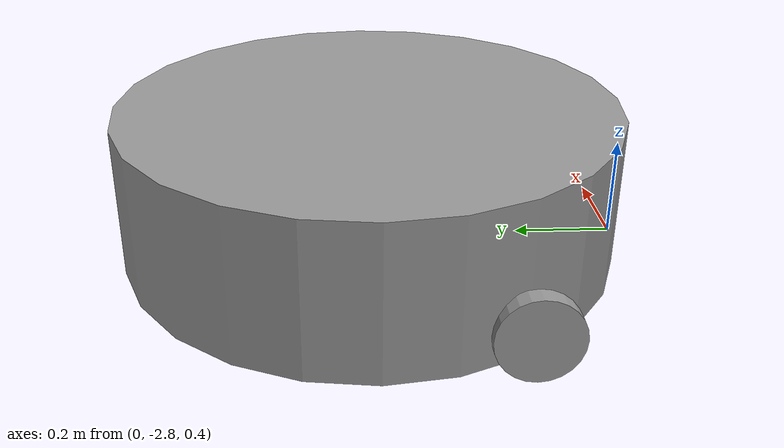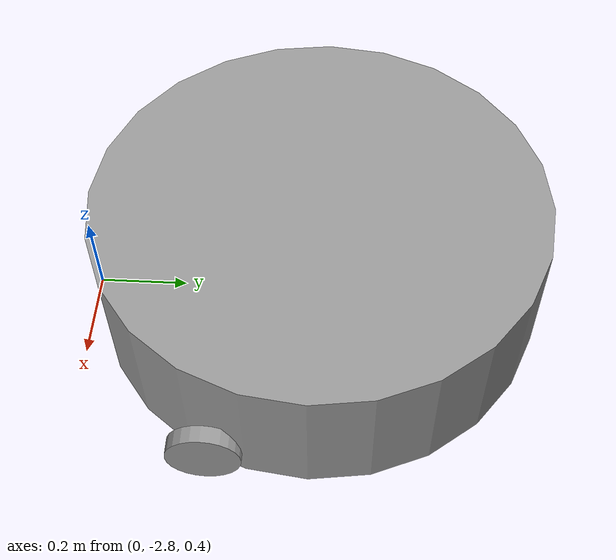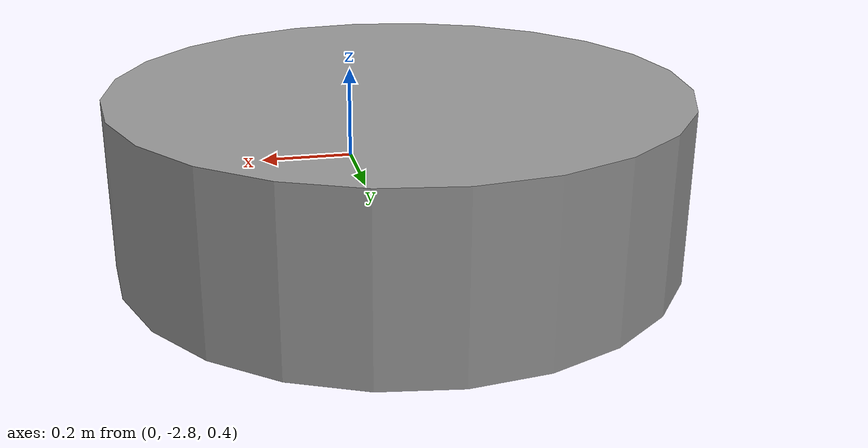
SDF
<?xml version='1.0'?>
<sdf version='1.6'>
  <model name='VacuumRobot'>
    <link name='link_0'>
      <pose frame=''>-0.010873 -2.28364 0.553866 0 -0 0</pose>
      <inertial>
        <mass>1</mass>
        <inertia>
          <ixx>0.145833</ixx>
          <ixy>0</ixy>
          <ixz>0</ixz>
          <iyy>0.145833</iyy>
          <iyz>0</iyz>
          <izz>0.125</izz>
        </inertia>
        <pose frame=''>0 0 0 0 -0 0</pose>
      </inertial>
      <gravity>1</gravity>
      <self_collide>0</self_collide>
      <kinematic>0</kinematic>
      <visual name='visual'>
        <pose frame=''>0 0 0 0 -0 0</pose>
        <geometry>
          <cylinder>
            <radius>0.5</radius>
            <length>0.3</length>
          </cylinder>
        </geometry>
        <material>
          <lighting>1</lighting>
          <script>
            <uri>file://media/materials/scripts/gazebo.material</uri>
            <name>Gazebo/Grey</name>
          </script>
          <shader type='pixel'>
            <normal_map>__default__</normal_map>
          </shader>
          <ambient>0.3 0.3 0.3 1</ambient>
          <diffuse>0.7 0.7 0.7 1</diffuse>
          <specular>0.01 0.01 0.01 1</specular>
          <emissive>0 0 0 1</emissive>
        </material>
        <transparency>0</transparency>
        <cast_shadows>1</cast_shadows>
      </visual>
      <collision name='collision'>
        <laser_retro>0</laser_retro>
        <max_contacts>10</max_contacts>
        <pose frame=''>0 0 0 0 -0 0</pose>
        <geometry>
          <cylinder>
            <radius>0.5</radius>
            <length>0.3</length>
          </cylinder>
        </geometry>
        <surface>
          <friction>
            <ode>
              <mu>1</mu>
              <mu2>1</mu2>
              <fdir1>0 0 0</fdir1>
              <slip1>0</slip1>
              <slip2>0</slip2>
            </ode>
            <torsional>
              <coefficient>1</coefficient>
              <patch_radius>0</patch_radius>
              <surface_radius>0</surface_radius>
              <use_patch_radius>1</use_patch_radius>
              <ode>
                <slip>0</slip>
              </ode>
            </torsional>
          </friction>
          <bounce>
            <restitution_coefficient>0</restitution_coefficient>
            <threshold>1e+06</threshold>
          </bounce>
          <contact>
            <collide_without_contact>0</collide_without_contact>
            <collide_without_contact_bitmask>1</collide_without_contact_bitmask>
            <collide_bitmask>1</collide_bitmask>
            <ode>
              <soft_cfm>0</soft_cfm>
              <soft_erp>0.2</soft_erp>
              <kp>1e+13</kp>
              <kd>1</kd>
              <max_vel>0.01</max_vel>
              <min_depth>0</min_depth>
            </ode>
            <bullet>
              <split_impulse>1</split_impulse>
              <split_impulse_penetration_threshold>-0.01</split_impulse_penetration_threshold>
              <soft_cfm>0</soft_cfm>
              <soft_erp>0.2</soft_erp>
              <kp>1e+13</kp>
              <kd>1</kd>
            </bullet>
          </contact>
        </surface>
      </collision>
    </link>
    <link name='link_2'>
      <pose frame=''>-0.47356 -2.54265 0.466165 0 -1.54019 0</pose>
      <inertial>
        <mass>0.00089413</mass>
        <inertia>
          <ixx>1.48e-06</ixx>
          <ixy>0</ixy>
          <ixz>0</ixz>
          <iyy>1.48e-06</iyy>
          <iyz>0</iyz>
          <izz>2.76e-06</izz>
        </inertia>
        <pose frame=''>0 0 0 0 -0 0</pose>
      </inertial>
      <gravity>1</gravity>
      <self_collide>0</self_collide>
      <kinematic>0</kinematic>
      <visual name='visual'>
        <pose frame=''>0 0 0 0 -0 0</pose>
        <geometry>
          <cylinder>
            <radius>0.0786342</radius>
            <length>0.0361282</length>
          </cylinder>
        </geometry>
        <material>
          <lighting>1</lighting>
          <script>
            <uri>file://media/materials/scripts/gazebo.material</uri>
            <name>Gazebo/Grey</name>
          </script>
          <shader type='pixel'>
            <normal_map>__default__</normal_map>
          </shader>
          <ambient>0.3 0.3 0.3 1</ambient>
          <diffuse>0.7 0.7 0.7 1</diffuse>
          <specular>0.01 0.01 0.01 1</specular>
          <emissive>0 0 0 1</emissive>
        </material>
        <transparency>0</transparency>
        <cast_shadows>1</cast_shadows>
      </visual>
      <collision name='collision'>
        <laser_retro>0</laser_retro>
        <max_contacts>10</max_contacts>
        <pose frame=''>0 0 0 0 -0 0</pose>
        <geometry>
          <cylinder>
            <radius>0.078634</radius>
            <length>0.036128</length>
          </cylinder>
        </geometry>
        <surface>
          <friction>
            <ode>
              <mu>1</mu>
              <mu2>1</mu2>
              <fdir1>0 0 0</fdir1>
              <slip1>0</slip1>
              <slip2>0</slip2>
            </ode>
            <torsional>
              <coefficient>1</coefficient>
              <patch_radius>0</patch_radius>
              <surface_radius>0</surface_radius>
              <use_patch_radius>1</use_patch_radius>
              <ode>
                <slip>0</slip>
              </ode>
            </torsional>
          </friction>
          <bounce>
            <restitution_coefficient>0</restitution_coefficient>
            <threshold>1e+06</threshold>
          </bounce>
          <contact>
            <collide_without_contact>0</collide_without_contact>
            <collide_without_contact_bitmask>1</collide_without_contact_bitmask>
            <collide_bitmask>1</collide_bitmask>
            <ode>
              <soft_cfm>0</soft_cfm>
              <soft_erp>0.2</soft_erp>
              <kp>1e+13</kp>
              <kd>1</kd>
              <max_vel>0.01</max_vel>
              <min_depth>0</min_depth>
            </ode>
            <bullet>
              <split_impulse>1</split_impulse>
              <split_impulse_penetration_threshold>-0.01</split_impulse_penetration_threshold>
              <soft_cfm>0</soft_cfm>
              <soft_erp>0.2</soft_erp>
              <kp>1e+13</kp>
              <kd>1</kd>
            </bullet>
          </contact>
        </surface>
      </collision>
    </link>
    <link name='link_2_clone'>
      <pose frame=''>0.468974 -2.49653 0.46497 0 -1.54019 0</pose>
      <inertial>
        <mass>0.00089413</mass>
        <inertia>
          <ixx>1.48e-06</ixx>
          <ixy>0</ixy>
          <ixz>0</ixz>
          <iyy>1.48e-06</iyy>
          <iyz>0</iyz>
          <izz>2.76e-06</izz>
        </inertia>
        <pose frame=''>0 0 0 0 -0 0</pose>
      </inertial>
      <self_collide>0</self_collide>
      <kinematic>0</kinematic>
      <gravity>1</gravity>
      <visual name='visual'>
        <pose frame=''>0 0 0 0 -0 0</pose>
        <geometry>
          <cylinder>
            <radius>0.0786342</radius>
            <length>0.0361282</length>
          </cylinder>
        </geometry>
        <material>
          <lighting>1</lighting>
          <script>
            <uri>file://media/materials/scripts/gazebo.material</uri>
            <name>Gazebo/Grey</name>
          </script>
          <shader type='pixel'>
            <normal_map>__default__</normal_map>
          </shader>
          <ambient>0.3 0.3 0.3 1</ambient>
          <diffuse>0.7 0.7 0.7 1</diffuse>
          <specular>0.01 0.01 0.01 1</specular>
          <emissive>0 0 0 1</emissive>
        </material>
        <transparency>0</transparency>
        <cast_shadows>1</cast_shadows>
      </visual>
      <collision name='collision'>
        <laser_retro>0</laser_retro>
        <max_contacts>10</max_contacts>
        <pose frame=''>0 0 0 0 -0 0</pose>
        <geometry>
          <cylinder>
            <radius>0.078634</radius>
            <length>0.036128</length>
          </cylinder>
        </geometry>
        <surface>
          <friction>
            <ode>
              <mu>1</mu>
              <mu2>1</mu2>
              <fdir1>0 0 0</fdir1>
              <slip1>0</slip1>
              <slip2>0</slip2>
            </ode>
            <torsional>
              <coefficient>1</coefficient>
              <patch_radius>0</patch_radius>
              <surface_radius>0</surface_radius>
              <use_patch_radius>1</use_patch_radius>
              <ode>
                <slip>0</slip>
              </ode>
            </torsional>
          </friction>
          <bounce>
            <restitution_coefficient>0</restitution_coefficient>
            <threshold>1e+06</threshold>
          </bounce>
          <contact>
            <collide_without_contact>0</collide_without_contact>
            <collide_without_contact_bitmask>1</collide_without_contact_bitmask>
            <collide_bitmask>1</collide_bitmask>
            <ode>
              <soft_cfm>0</soft_cfm>
              <soft_erp>0.2</soft_erp>
              <kp>1e+13</kp>
              <kd>1</kd>
              <max_vel>0.01</max_vel>
              <min_depth>0</min_depth>
            </ode>
            <bullet>
              <split_impulse>1</split_impulse>
              <split_impulse_penetration_threshold>-0.01</split_impulse_penetration_threshold>
              <soft_cfm>0</soft_cfm>
              <soft_erp>0.2</soft_erp>
              <kp>1e+13</kp>
              <kd>1</kd>
            </bullet>
          </contact>
        </surface>
      </collision>
    </link>
    <joint name='link_0_JOINT_5' type='revolute'>
      <parent>link_0</parent>
      <child>link_2</child>
      <pose frame=''>0 0 0 0 -0 0</pose>
      <axis>
        <xyz>0 0 1</xyz>
        <use_parent_model_frame>0</use_parent_model_frame>
        <limit>
          <lower>-1.79769e+308</lower>
          <upper>1.79769e+308</upper>
          <effort>-1</effort>
          <velocity>-1</velocity>
        </limit>
        <dynamics>
          <spring_reference>0</spring_reference>
          <spring_stiffness>0</spring_stiffness>
          <damping>0</damping>
          <friction>0</friction>
        </dynamics>
      </axis>
      <physics>
        <ode>
          <limit>
            <cfm>0</cfm>
            <erp>0.2</erp>
          </limit>
          <suspension>
            <cfm>0</cfm>
            <erp>0.2</erp>
          </suspension>
        </ode>
      </physics>
    </joint>
    <joint name='link_0_JOINT_6' type='revolute'>
      <parent>link_0</parent>
      <child>link_2_clone</child>
      <pose frame=''>0 0 0 0 -0 0</pose>
      <axis>
        <xyz>1 0 0</xyz>
        <use_parent_model_frame>0</use_parent_model_frame>
        <limit>
          <lower>-1.79769e+308</lower>
          <upper>1.79769e+308</upper>
          <effort>-1</effort>
          <velocity>-1</velocity>
        </limit>
        <dynamics>
          <spring_reference>0</spring_reference>
          <spring_stiffness>0</spring_stiffness>
          <damping>0</damping>
        </dynamics>
      </axis>
      <physics>
        <ode>
          <limit>
            <cfm>0</cfm>
            <erp>0.2</erp>
          </limit>
          <suspension>
            <cfm>0</cfm>
            <erp>0.2</erp>
          </suspension>
        </ode>
      </physics>
    </joint>
    <static>0</static>
    <allow_auto_disable>1</allow_auto_disable>
  </model>
</sdf>
